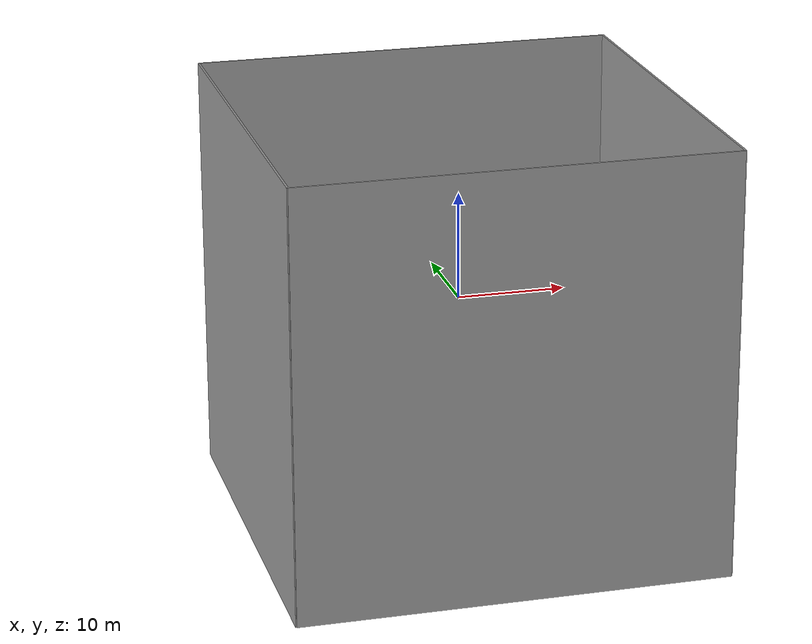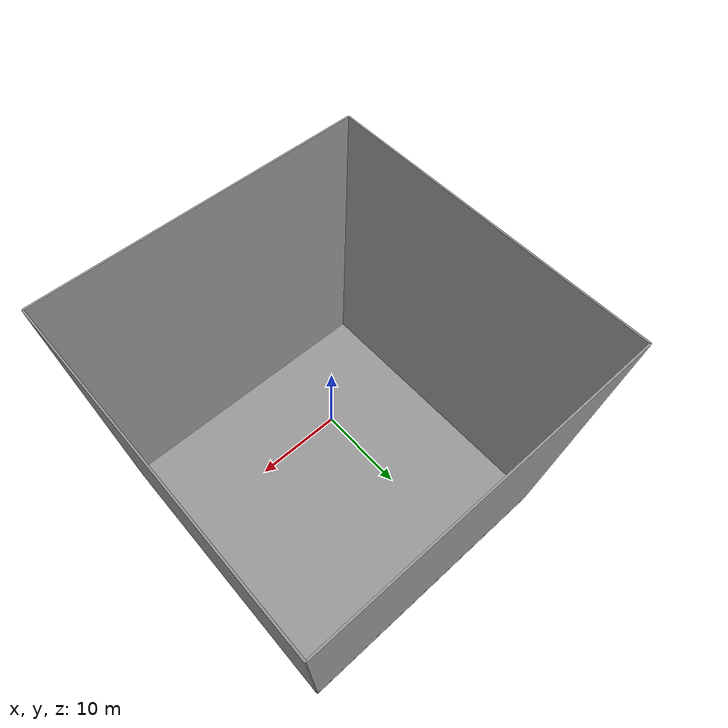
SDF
<sdf version="1.4">
 <world name="oceans_waves">
  <physics name="default_physics" default="true" type="ode">
   <max_step_size>0.002</max_step_size>
   <real_time_factor>1</real_time_factor>
   <real_time_update_rate>500</real_time_update_rate>
  </physics>
  <scene>
   <ambient>0.01 0.01 0.01 1.0</ambient>
   <sky><clouds><speed>12</speed></clouds></sky>
   <shadows>1</shadows>
  </scene>
  <spherical_coordinates>
   <latitude_deg>56.71897669633431</latitude_deg>
   <longitude_deg>3.515625</longitude_deg>
  </spherical_coordinates>
  <light type="directional" name="sun1">
   <pose>50 0 150 0 0 0</pose>
   <diffuse>1 1 1 1</diffuse>
   <specular>.1 .1 .1 1</specular>
   <direction>0.3 0.3 -1</direction>
  </light>
  <light type="directional" name="sun_diffuse">
   <pose>-50 0 -150 0 0 0</pose>
   <diffuse>0.6 0.6 0.6 1</diffuse>
   <specular>0 0 0 1</specular>
   <direction>-0.3 -0.3 -1</direction>
  </light>
  <scene>
   <ambient>0.01 0.01 0.01 1.0</ambient>
   <sky><clouds><speed>12</speed></clouds></sky>
   <shadows>1</shadows>
   <fog>
    <color>0.1 0.2 0.3 1.0</color>
    <type>linear</type>
    <density>0.1</density>
    <start>10</start>
    <end>40</end>
   </fog>
  </scene>
  <include><uri>model://grey_wall</uri><pose>0 -20.0 -3.0 0 0 0</pose><name>grey_wall_0</name></include>
  <include><uri>model://grey_wall</uri><pose>0 20.0 -3.0 0 0 0</pose><name>grey_wall_1</name></include>
  <include>
   <uri>model://grey_wall</uri>
   <pose>-20.0 0.0 -3.0 0 0 1.57079632679</pose>
   <name>grey_wall_2</name>
  </include>
  <include>
   <uri>model://grey_wall</uri>
   <pose>20.0 0.0 -3.0 0 0 1.57079632679</pose>
   <name>grey_wall_3</name>
  </include>
  <include>
   <uri>model://grey_wall</uri>
   <pose>0.0 1.5 -20.0 1.57079632679 0 0</pose>
   <name>grey_wall_4</name>
  </include>
  <plugin name="underwater_current_plugin" filename="libuuv_underwater_current_ros_plugin.so">
   <namespace>hydrodynamics</namespace>
   <constant_current>
    <topic>current_velocity</topic>
    <velocity><mean>0</mean><min>0</min><max>5</max><mu>0.0</mu><noiseAmp>0.0</noiseAmp></velocity>
    <horizontal_angle>
     <mean>0</mean>
     <min>-3.141592653589793238</min>
     <max>3.141592653589793238</max>
     <mu>0.0</mu>
     <noiseAmp>0.0</noiseAmp>
    </horizontal_angle>
    <vertical_angle>
     <mean>0</mean>
     <min>-3.141592653589793238</min>
     <max>3.141592653589793238</max>
     <mu>0.0</mu>
     <noiseAmp>0.0</noiseAmp>
    </vertical_angle>
   </constant_current>
  </plugin>
  <plugin name="sc_interface" filename="libuuv_sc_ros_interface_plugin.so"/>
 </world>
</sdf>

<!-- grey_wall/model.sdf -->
<sdf version="1.5">
  <model name="grey_wall">
    <static>true</static>
    <link name="link">
      <pose>0 0 1.4 0 0 0</pose>
      <collision name="collision">
        <geometry>
          <box>
            <size>40.0 0.2 40.0</size>
          </box>
        </geometry>
      </collision>
      <visual name="visual">
        <cast_shadows>false</cast_shadows>
        <geometry>
          <box>
            <size>40.0 0.2 40.0</size>
          </box>
        </geometry>
        <material>
          <script>
            <uri>model://grey_wall/materials/scripts</uri>
            <uri>model://grey_wall/materials/textures</uri>
            <name>vrc/grey_wall</name>
          </script>
        </material>
      </visual>
    </link>
  </model>
</sdf>
